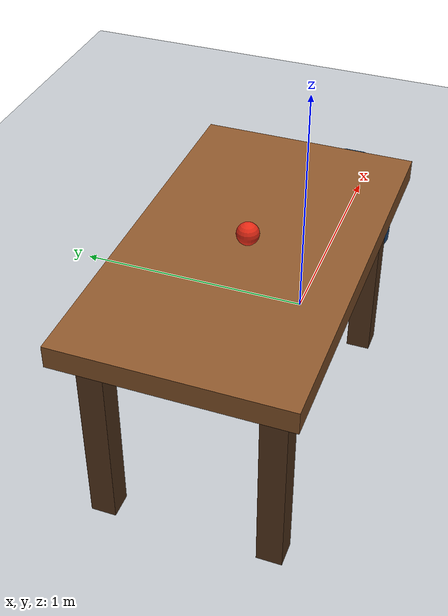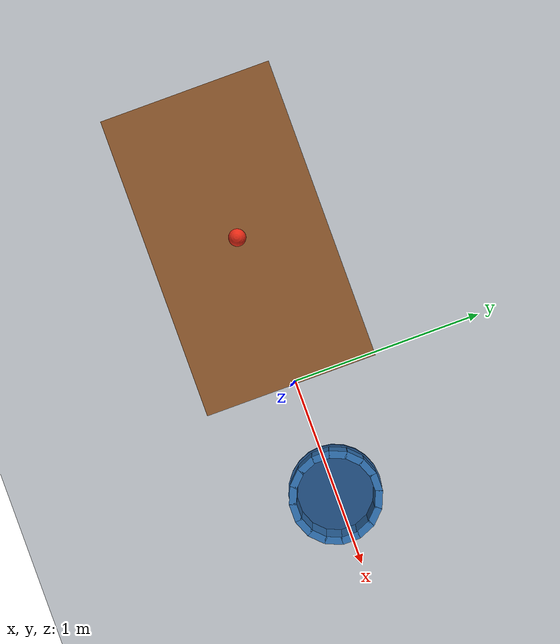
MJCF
<mujoco model="rolling_ball_into_bucket">
  <compiler angle="degree"/>
  <option timestep="0.002" gravity="0 0 -9.81" integrator="implicitfast"/>
  <statistic center="-0.1 0 0.4" extent="2.1"/>

  <visual>
    <global azimuth="135" elevation="-25"/>
  </visual>

  <worldbody>
    <light name="overhead" pos="0 -1 3" dir="0 0 -1" diffuse="0.8 0.8 0.8"/>
    <geom name="floor" type="plane" size="3 2 0.1" rgba="0.75 0.77 0.79 1" friction="0.8 0.01 0.01" condim="6"/>

    <!-- Table top is at z=0.80; its departure edge is at x=0. -->
    <body name="table" pos="0 0 0">
      <geom name="table_top" type="box" pos="-0.7 0 0.76" size="0.7 0.4 0.04" rgba="0.55 0.34 0.17 1" friction="0.8 0.001 0.0001" condim="3" solref="0.015 1"/>
      <geom name="table_leg_back_left" type="box" pos="-1.27 -0.30 0.36" size="0.045 0.045 0.36" rgba="0.35 0.22 0.12 1"/>
      <geom name="table_leg_back_right" type="box" pos="-1.27 0.30 0.36" size="0.045 0.045 0.36" rgba="0.35 0.22 0.12 1"/>
      <geom name="table_leg_front_left" type="box" pos="-0.13 -0.30 0.36" size="0.045 0.045 0.36" rgba="0.35 0.22 0.12 1"/>
      <geom name="table_leg_front_right" type="box" pos="-0.13 0.30 0.36" size="0.045 0.045 0.36" rgba="0.35 0.22 0.12 1"/>
    </body>

    <!-- Open bucket: centre 0.60 m beyond the table edge, bottom on the floor. -->
    <!-- Overlapping wall boxes form a closed, sixteen-sided rim and wall. -->
    <body name="bucket" pos="0.6 0 0">
      <geom name="bucket_bottom" type="cylinder" pos="0 0 0.025" size="0.24 0.025" rgba="0.12 0.30 0.50 1" friction="1 0.02 0.01" condim="6" solref="0.015 1"/>
      <geom name="bucket_wall_00" type="box" pos="0.210000 0 0.165" euler="0 0 0" size="0.018 0.044 0.135" rgba="0.18 0.43 0.68 1" friction="1 0.02 0.01" condim="6" solref="0.015 1"/>
      <geom name="bucket_wall_01" type="box" pos="0.194015 0.080364 0.165" euler="0 0 22.5" size="0.018 0.044 0.135" rgba="0.18 0.43 0.68 1" friction="1 0.02 0.01" condim="6" solref="0.015 1"/>
      <geom name="bucket_wall_02" type="box" pos="0.148492 0.148492 0.165" euler="0 0 45" size="0.018 0.044 0.135" rgba="0.18 0.43 0.68 1" friction="1 0.02 0.01" condim="6" solref="0.015 1"/>
      <geom name="bucket_wall_03" type="box" pos="0.080364 0.194015 0.165" euler="0 0 67.5" size="0.018 0.044 0.135" rgba="0.18 0.43 0.68 1" friction="1 0.02 0.01" condim="6" solref="0.015 1"/>
      <geom name="bucket_wall_04" type="box" pos="0 0.210000 0.165" euler="0 0 90" size="0.018 0.044 0.135" rgba="0.18 0.43 0.68 1" friction="1 0.02 0.01" condim="6" solref="0.015 1"/>
      <geom name="bucket_wall_05" type="box" pos="-0.080364 0.194015 0.165" euler="0 0 112.5" size="0.018 0.044 0.135" rgba="0.18 0.43 0.68 1" friction="1 0.02 0.01" condim="6" solref="0.015 1"/>
      <geom name="bucket_wall_06" type="box" pos="-0.148492 0.148492 0.165" euler="0 0 135" size="0.018 0.044 0.135" rgba="0.18 0.43 0.68 1" friction="1 0.02 0.01" condim="6" solref="0.015 1"/>
      <geom name="bucket_wall_07" type="box" pos="-0.194015 0.080364 0.165" euler="0 0 157.5" size="0.018 0.044 0.135" rgba="0.18 0.43 0.68 1" friction="1 0.02 0.01" condim="6" solref="0.015 1"/>
      <geom name="bucket_wall_08" type="box" pos="-0.210000 0 0.165" euler="0 0 180" size="0.018 0.044 0.135" rgba="0.18 0.43 0.68 1" friction="1 0.02 0.01" condim="6" solref="0.015 1"/>
      <geom name="bucket_wall_09" type="box" pos="-0.194015 -0.080364 0.165" euler="0 0 202.5" size="0.018 0.044 0.135" rgba="0.18 0.43 0.68 1" friction="1 0.02 0.01" condim="6" solref="0.015 1"/>
      <geom name="bucket_wall_10" type="box" pos="-0.148492 -0.148492 0.165" euler="0 0 225" size="0.018 0.044 0.135" rgba="0.18 0.43 0.68 1" friction="1 0.02 0.01" condim="6" solref="0.015 1"/>
      <geom name="bucket_wall_11" type="box" pos="-0.080364 -0.194015 0.165" euler="0 0 247.5" size="0.018 0.044 0.135" rgba="0.18 0.43 0.68 1" friction="1 0.02 0.01" condim="6" solref="0.015 1"/>
      <geom name="bucket_wall_12" type="box" pos="0 -0.210000 0.165" euler="0 0 270" size="0.018 0.044 0.135" rgba="0.18 0.43 0.68 1" friction="1 0.02 0.01" condim="6" solref="0.015 1"/>
      <geom name="bucket_wall_13" type="box" pos="0.080364 -0.194015 0.165" euler="0 0 292.5" size="0.018 0.044 0.135" rgba="0.18 0.43 0.68 1" friction="1 0.02 0.01" condim="6" solref="0.015 1"/>
      <geom name="bucket_wall_14" type="box" pos="0.148492 -0.148492 0.165" euler="0 0 315" size="0.018 0.044 0.135" rgba="0.18 0.43 0.68 1" friction="1 0.02 0.01" condim="6" solref="0.015 1"/>
      <geom name="bucket_wall_15" type="box" pos="0.194015 -0.080364 0.165" euler="0 0 337.5" size="0.018 0.044 0.135" rgba="0.18 0.43 0.68 1" friction="1 0.02 0.01" condim="6" solref="0.015 1"/>
    </body>

    <body name="ball" pos="-0.7 0 0.84">
      <freejoint name="ball_free"/>
      <geom name="ball" type="sphere" size="0.04" mass="0.18" rgba="0.90 0.16 0.08 1" friction="0.6 0.001 0.0001" condim="3" solref="0.015 1"/>
    </body>
  </worldbody>

  <!-- Initial spin satisfies rolling without slipping: omega_y = vx / radius. -->
  <keyframe>
    <key name="start" qpos="-0.7 0 0.84 1 0 0 0" qvel="1.55 0 0 0 38.75 0"/>
  </keyframe>
</mujoco>
